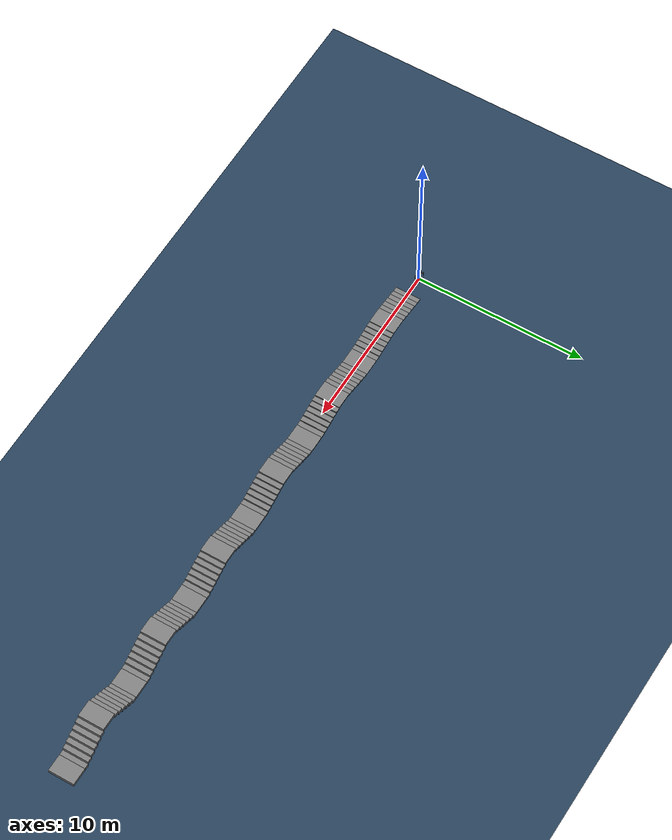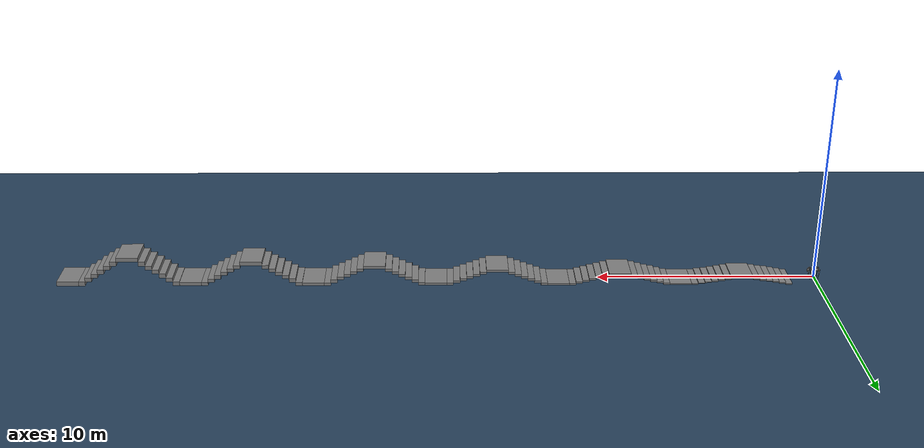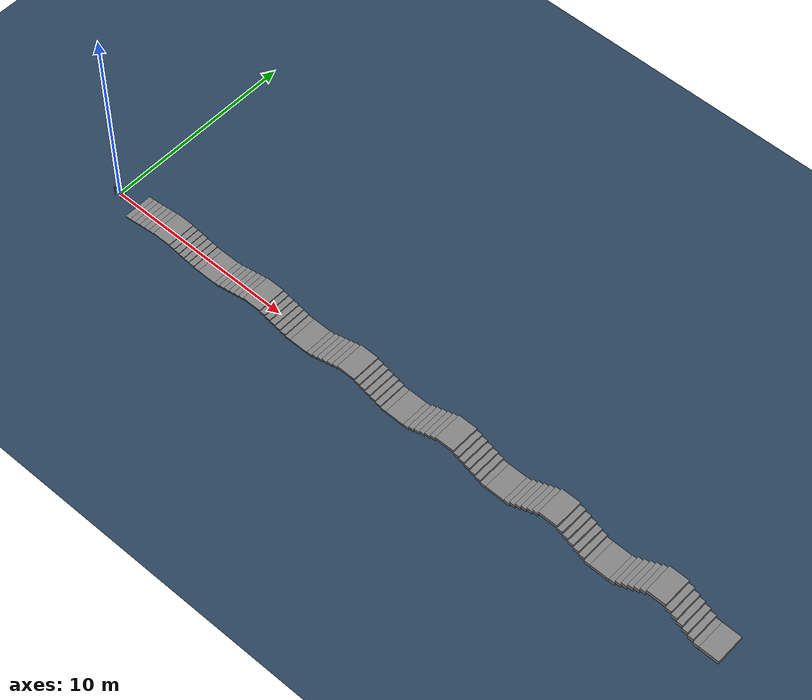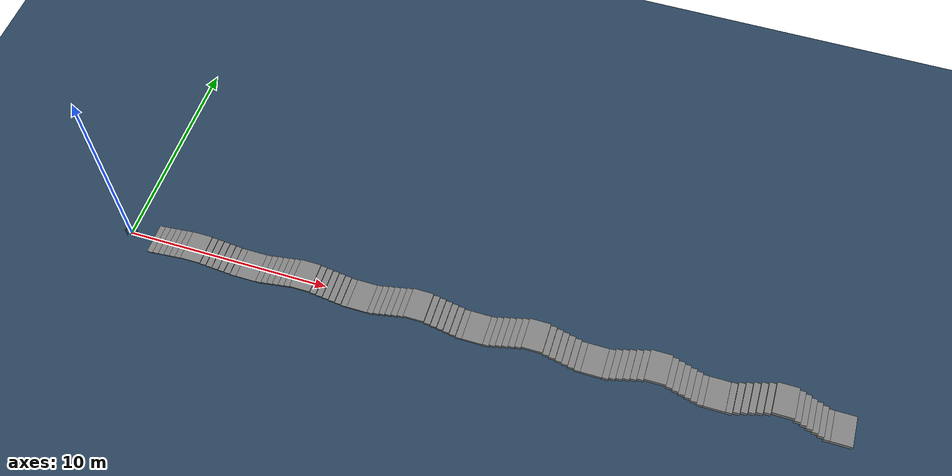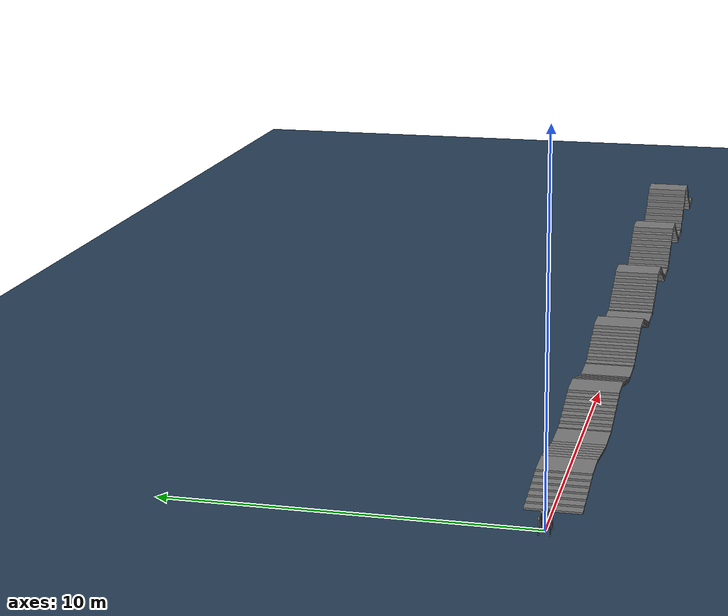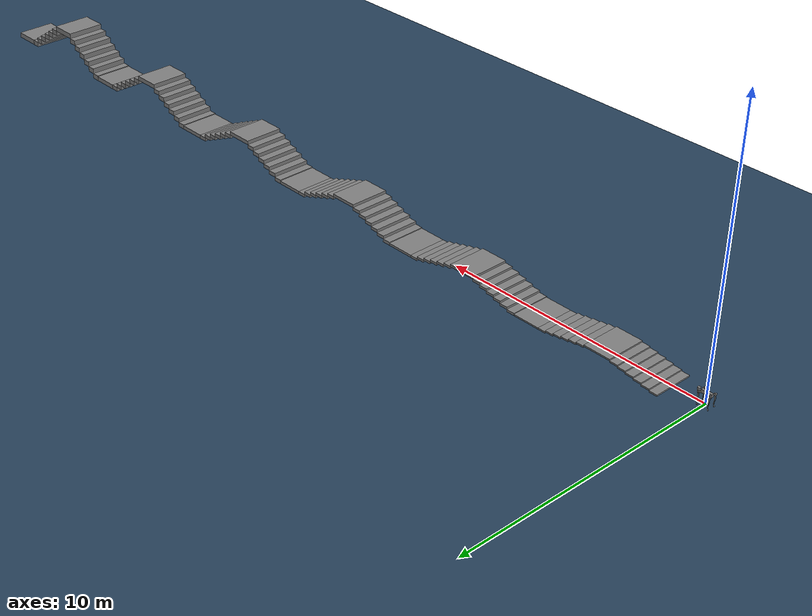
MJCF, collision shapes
<mujoco model="go2 scene">
  <include file="go2.xml"/>

  <statistic center="0 0 0.1" extent="0.8" />

  <visual>
    <headlight diffuse="0.6 0.6 0.6" ambient="0.3 0.3 0.3" specular="0 0 0" />
    <rgba haze="0.15 0.25 0.35 1" />
    <global azimuth="-130" elevation="-20" />
  </visual>

  <asset>
    <texture type="skybox" builtin="gradient" rgb1="0.3 0.5 0.7" rgb2="0 0 0" width="512" height="3072" />
    <texture type="2d" name="groundplane" builtin="checker" mark="edge" rgb1="0.2 0.3 0.4" rgb2="0.1 0.2 0.3" markrgb="0.8 0.8 0.8" width="300" height="300" />
    <material name="groundplane" texture="groundplane" texuniform="true" texrepeat="5 5" reflectance="0.2" />
  </asset>

  <worldbody>
    <light pos="0 0 1.5" dir="0 0 -1" directional="true" />
    <geom name="floor" size="0 0 0.05" type="plane" material="groundplane" />

  <geom pos="1.3 0.0 0.025" type="box" size="0.15 0.75 0.025" quat="1.0 0.0 0.0 0.0" /><geom pos="1.6 0.0 0.07500000000000001" type="box" size="0.15 0.75 0.025" quat="1.0 0.0 0.0 0.0" /><geom pos="1.9 0.0 0.125" type="box" size="0.15 0.75 0.025" quat="1.0 0.0 0.0 0.0" /><geom pos="2.2 0.0 0.17500000000000002" type="box" size="0.15 0.75 0.025" quat="1.0 0.0 0.0 0.0" /><geom pos="2.5 0.0 0.225" type="box" size="0.15 0.75 0.025" quat="1.0 0.0 0.0 0.0" /><geom pos="2.8 0.0 0.275" type="box" size="0.15 0.75 0.025" quat="1.0 0.0 0.0 0.0" /><geom pos="3.4499999999999997 0.0 0.32500000000000007" type="box" size="0.5 0.75 0.025" quat="1.0 0.0 0.0 0.0" /><geom pos="4.1 0.0 0.275" type="box" size="0.15 0.75 0.025" quat="1.0 0.0 0.0 0.0" /><geom pos="4.3999999999999995 0.0 0.22500000000000003" type="box" size="0.15 0.75 0.025" quat="1.0 0.0 0.0 0.0" /><geom pos="4.699999999999999 0.0 0.17500000000000002" type="box" size="0.15 0.75 0.025" quat="1.0 0.0 0.0 0.0" /><geom pos="5.0 0.0 0.125" type="box" size="0.15 0.75 0.025" quat="1.0 0.0 0.0 0.0" /><geom pos="5.3 0.0 0.07500000000000001" type="box" size="0.15 0.75 0.025" quat="1.0 0.0 0.0 0.0" /><geom pos="5.6 0.0 0.025000000000000022" type="box" size="0.15 0.75 0.025" quat="1.0 0.0 0.0 0.0" /><geom pos="6.25 0.0 0.025" type="box" size="0.5 0.75 0.025" quat="1.0 0.0 0.0 0.0" /><geom pos="6.898999999999999 0.0 0.04" type="box" size="0.15 0.75 0.04" quat="1.0 0.0 0.0 0.0" /><geom pos="7.198999999999999 0.0 0.12" type="box" size="0.15 0.75 0.04" quat="1.0 0.0 0.0 0.0" /><geom pos="7.498999999999999 0.0 0.2" type="box" size="0.15 0.75 0.04" quat="1.0 0.0 0.0 0.0" /><geom pos="7.7989999999999995 0.0 0.28" type="box" size="0.15 0.75 0.04" quat="1.0 0.0 0.0 0.0" /><geom pos="8.099 0.0 0.36" type="box" size="0.15 0.75 0.04" quat="1.0 0.0 0.0 0.0" /><geom pos="8.399 0.0 0.44" type="box" size="0.15 0.75 0.04" quat="1.0 0.0 0.0 0.0" /><geom pos="9.049 0.0 0.52" type="box" size="0.5 0.75 0.04" quat="1.0 0.0 0.0 0.0" /><geom pos="9.698999999999998 0.0 0.44" type="box" size="0.15 0.75 0.04" quat="1.0 0.0 0.0 0.0" /><geom pos="9.998999999999999 0.0 0.36" type="box" size="0.15 0.75 0.04" quat="1.0 0.0 0.0 0.0" /><geom pos="10.299 0.0 0.28" type="box" size="0.15 0.75 0.04" quat="1.0 0.0 0.0 0.0" /><geom pos="10.598999999999998 0.0 0.2" type="box" size="0.15 0.75 0.04" quat="1.0 0.0 0.0 0.0" /><geom pos="10.899 0.0 0.12" type="box" size="0.15 0.75 0.04" quat="1.0 0.0 0.0 0.0" /><geom pos="11.198999999999998 0.0 0.03999999999999998" type="box" size="0.15 0.75 0.04" quat="1.0 0.0 0.0 0.0" /><geom pos="11.849 0.0 0.04" type="box" size="0.5 0.75 0.04" quat="1.0 0.0 0.0 0.0" /><geom pos="12.498 0.0 0.055" type="box" size="0.15 0.75 0.055" quat="1.0 0.0 0.0 0.0" /><geom pos="12.797999999999998 0.0 0.165" type="box" size="0.15 0.75 0.055" quat="1.0 0.0 0.0 0.0" /><geom pos="13.097999999999999 0.0 0.275" type="box" size="0.15 0.75 0.055" quat="1.0 0.0 0.0 0.0" /><geom pos="13.397999999999998 0.0 0.385" type="box" size="0.15 0.75 0.055" quat="1.0 0.0 0.0 0.0" /><geom pos="13.697999999999999 0.0 0.495" type="box" size="0.15 0.75 0.055" quat="1.0 0.0 0.0 0.0" /><geom pos="13.997999999999998 0.0 0.605" type="box" size="0.15 0.75 0.055" quat="1.0 0.0 0.0 0.0" /><geom pos="14.647999999999998 0.0 0.7150000000000001" type="box" size="0.5 0.75 0.055" quat="1.0 0.0 0.0 0.0" /><geom pos="15.297999999999998 0.0 0.605" type="box" size="0.15 0.75 0.055" quat="1.0 0.0 0.0 0.0" /><geom pos="15.597999999999999 0.0 0.495" type="box" size="0.15 0.75 0.055" quat="1.0 0.0 0.0 0.0" /><geom pos="15.897999999999998 0.0 0.385" type="box" size="0.15 0.75 0.055" quat="1.0 0.0 0.0 0.0" /><geom pos="16.197999999999997 0.0 0.27499999999999997" type="box" size="0.15 0.75 0.055" quat="1.0 0.0 0.0 0.0" /><geom pos="16.497999999999998 0.0 0.16499999999999998" type="box" size="0.15 0.75 0.055" quat="1.0 0.0 0.0 0.0" /><geom pos="16.798 0.0 0.05499999999999994" type="box" size="0.15 0.75 0.055" quat="1.0 0.0 0.0 0.0" /><geom pos="17.448 0.0 0.055" type="box" size="0.5 0.75 0.055" quat="1.0 0.0 0.0 0.0" /><geom pos="18.096999999999998 0.0 0.07" type="box" size="0.15 0.75 0.07" quat="1.0 0.0 0.0 0.0" /><geom pos="18.397 0.0 0.21000000000000002" type="box" size="0.15 0.75 0.07" quat="1.0 0.0 0.0 0.0" /><geom pos="18.696999999999996 0.0 0.35000000000000003" type="box" size="0.15 0.75 0.07" quat="1.0 0.0 0.0 0.0" /><geom pos="18.996999999999996 0.0 0.49000000000000005" type="box" size="0.15 0.75 0.07" quat="1.0 0.0 0.0 0.0" /><geom pos="19.296999999999997 0.0 0.6300000000000001" type="box" size="0.15 0.75 0.07" quat="1.0 0.0 0.0 0.0" /><geom pos="19.596999999999998 0.0 0.77" type="box" size="0.15 0.75 0.07" quat="1.0 0.0 0.0 0.0" /><geom pos="20.246999999999996 0.0 0.9100000000000001" type="box" size="0.5 0.75 0.07" quat="1.0 0.0 0.0 0.0" /><geom pos="20.897 0.0 0.77" type="box" size="0.15 0.75 0.07" quat="1.0 0.0 0.0 0.0" /><geom pos="21.196999999999996 0.0 0.63" type="box" size="0.15 0.75 0.07" quat="1.0 0.0 0.0 0.0" /><geom pos="21.496999999999996 0.0 0.49" type="box" size="0.15 0.75 0.07" quat="1.0 0.0 0.0 0.0" /><geom pos="21.796999999999997 0.0 0.35" type="box" size="0.15 0.75 0.07" quat="1.0 0.0 0.0 0.0" /><geom pos="22.096999999999998 0.0 0.20999999999999996" type="box" size="0.15 0.75 0.07" quat="1.0 0.0 0.0 0.0" /><geom pos="22.397 0.0 0.06999999999999995" type="box" size="0.15 0.75 0.07" quat="1.0 0.0 0.0 0.0" /><geom pos="23.046999999999997 0.0 0.07" type="box" size="0.5 0.75 0.07" quat="1.0 0.0 0.0 0.0" /><geom pos="23.695999999999998 0.0 0.085" type="box" size="0.15 0.75 0.085" quat="1.0 0.0 0.0 0.0" /><geom pos="23.996 0.0 0.255" type="box" size="0.15 0.75 0.085" quat="1.0 0.0 0.0 0.0" /><geom pos="24.295999999999996 0.0 0.42500000000000004" type="box" size="0.15 0.75 0.085" quat="1.0 0.0 0.0 0.0" /><geom pos="24.595999999999997 0.0 0.5950000000000001" type="box" size="0.15 0.75 0.085" quat="1.0 0.0 0.0 0.0" /><geom pos="24.895999999999997 0.0 0.765" type="box" size="0.15 0.75 0.085" quat="1.0 0.0 0.0 0.0" /><geom pos="25.195999999999998 0.0 0.935" type="box" size="0.15 0.75 0.085" quat="1.0 0.0 0.0 0.0" /><geom pos="25.845999999999997 0.0 1.105" type="box" size="0.5 0.75 0.085" quat="1.0 0.0 0.0 0.0" /><geom pos="26.495999999999995 0.0 0.935" type="box" size="0.15 0.75 0.085" quat="1.0 0.0 0.0 0.0" /><geom pos="26.795999999999996 0.0 0.765" type="box" size="0.15 0.75 0.085" quat="1.0 0.0 0.0 0.0" /><geom pos="27.095999999999997 0.0 0.595" type="box" size="0.15 0.75 0.085" quat="1.0 0.0 0.0 0.0" /><geom pos="27.395999999999997 0.0 0.42500000000000004" type="box" size="0.15 0.75 0.085" quat="1.0 0.0 0.0 0.0" /><geom pos="27.695999999999998 0.0 0.255" type="box" size="0.15 0.75 0.085" quat="1.0 0.0 0.0 0.0" /><geom pos="27.995999999999995 0.0 0.08499999999999996" type="box" size="0.15 0.75 0.085" quat="1.0 0.0 0.0 0.0" /><geom pos="28.645999999999997 0.0 0.085" type="box" size="0.5 0.75 0.085" quat="1.0 0.0 0.0 0.0" /><geom pos="29.294999999999998 0.0 0.1" type="box" size="0.15 0.75 0.1" quat="1.0 0.0 0.0 0.0" /><geom pos="29.595 0.0 0.30000000000000004" type="box" size="0.15 0.75 0.1" quat="1.0 0.0 0.0 0.0" /><geom pos="29.894999999999996 0.0 0.5" type="box" size="0.15 0.75 0.1" quat="1.0 0.0 0.0 0.0" /><geom pos="30.194999999999997 0.0 0.7000000000000001" type="box" size="0.15 0.75 0.1" quat="1.0 0.0 0.0 0.0" /><geom pos="30.494999999999997 0.0 0.9" type="box" size="0.15 0.75 0.1" quat="1.0 0.0 0.0 0.0" /><geom pos="30.794999999999998 0.0 1.1" type="box" size="0.15 0.75 0.1" quat="1.0 0.0 0.0 0.0" /><geom pos="31.444999999999997 0.0 1.3000000000000003" type="box" size="0.5 0.75 0.1" quat="1.0 0.0 0.0 0.0" /><geom pos="32.095 0.0 1.1" type="box" size="0.15 0.75 0.1" quat="1.0 0.0 0.0 0.0" /><geom pos="32.394999999999996 0.0 0.9000000000000001" type="box" size="0.15 0.75 0.1" quat="1.0 0.0 0.0 0.0" /><geom pos="32.695 0.0 0.7000000000000001" type="box" size="0.15 0.75 0.1" quat="1.0 0.0 0.0 0.0" /><geom pos="32.995 0.0 0.5" type="box" size="0.15 0.75 0.1" quat="1.0 0.0 0.0 0.0" /><geom pos="33.294999999999995 0.0 0.30000000000000004" type="box" size="0.15 0.75 0.1" quat="1.0 0.0 0.0 0.0" /><geom pos="33.595 0.0 0.10000000000000009" type="box" size="0.15 0.75 0.1" quat="1.0 0.0 0.0 0.0" /><geom pos="34.245 0.0 0.1" type="box" size="0.5 0.75 0.1" quat="1.0 0.0 0.0 0.0" /></worldbody>
</mujoco>

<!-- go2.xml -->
<mujoco model="go2">
  <compiler angle="radian" meshdir="assets" autolimits="true" />

  <option cone="elliptic" impratio="100" />

  <default>
    <default class="go2">
      <geom friction="0.6" margin="0.001" condim="1"/>
      <joint axis="0 1 0" damping="0.1" armature="0.01" frictionloss="0.2"/>
      <motor ctrlrange="-23.7 23.7"/>
      <default class="abduction">
        <joint axis="1 0 0" range="-1.0472 1.0472"/>
      </default>
      <default class="hip">
        <default class="front_hip">
          <joint range="-1.5708 3.4907"/>
        </default>
        <default class="back_hip">
          <joint range="-0.5236 4.5379"/>
        </default>
      </default>
      <default class="knee">
        <joint range="-2.7227 -0.83776"/>
        <motor ctrlrange="-45.43 45.43"/>
      </default>
      <default class="visual">
        <geom type="mesh" contype="0" conaffinity="0" group="2"/>
      </default>
      <default class="collision">
        <geom group="3"/>
        <default class="foot">
          <geom size="0.022" pos="-0.002 0 -0.213" priority="1" condim="6"
            friction="0.6 0.02 0.01"/>
        </default>
      </default>
    </default>
  </default>

  <asset>
    <material name="metal" rgba=".9 .95 .95 1" />
    <material name="black" rgba="0 0 0 1" />
    <material name="white" rgba="1 1 1 1" />
    <material name="gray" rgba="0.671705 0.692426 0.774270 1" />

    <mesh file="base_0.obj" />
    <mesh file="base_1.obj" />
    <mesh file="base_2.obj" />
    <mesh file="base_3.obj" />
    <mesh file="base_4.obj" />
    <mesh file="hip_0.obj" />
    <mesh file="hip_1.obj" />
    <mesh file="thigh_0.obj" />
    <mesh file="thigh_1.obj" />
    <mesh file="thigh_mirror_0.obj" />
    <mesh file="thigh_mirror_1.obj" />
    <mesh file="calf_0.obj" />
    <mesh file="calf_1.obj" />
    <mesh file="calf_mirror_0.obj" />
    <mesh file="calf_mirror_1.obj" />
    <mesh file="foot.obj" />
  </asset>

  <worldbody>
    <body name="base_link" pos="0 0 0.4" childclass="go2">
      <inertial pos="0.021112 0 -0.005366" quat="-0.000543471 0.713435 -0.00173769 0.700719"
        mass="6.921"
        diaginertia="0.107027 0.0980771 0.0244531" />
      <freejoint />
      <geom mesh="base_0" material="black" class="visual" />
      <geom mesh="base_1" material="black" class="visual" />
      <geom mesh="base_2" material="black" class="visual" />
      <geom mesh="base_3" material="white" class="visual" />
      <geom mesh="base_4" material="gray" class="visual" />
      <geom size="0.1881 0.04675 0.057" type="box" class="collision" />
      <geom size="0.05 0.045" pos="0.285 0 0.01" type="cylinder" class="collision" />
      <geom size="0.047" pos="0.293 0 -0.06" class="collision" />
      <site name="imu" pos="-0.02557 0 0.04232" />
      <body name="FL_hip" pos="0.1934 0.0465 0">
        <inertial pos="-0.0054 0.00194 -0.000105" quat="0.497014 0.499245 0.505462 0.498237"
          mass="0.678"
          diaginertia="0.00088403 0.000596003 0.000479967" />
        <joint name="FL_hip_joint" class="abduction" />
        <geom mesh="hip_0" material="metal" class="visual" />
        <geom mesh="hip_1" material="gray" class="visual" />
        <geom size="0.046 0.02" pos="0 0.08 0" quat="1 1 0 0" type="cylinder" class="collision" />
        <body name="FL_thigh" pos="0 0.0955 0">
          <inertial pos="-0.00374 -0.0223 -0.0327" quat="0.829533 0.0847635 -0.0200632 0.551623"
            mass="1.152"
            diaginertia="0.00594973 0.00584149 0.000878787" />
          <joint name="FL_thigh_joint" class="front_hip" />
          <geom mesh="thigh_0" material="metal" class="visual" />
          <geom mesh="thigh_1" material="gray" class="visual" />
          <geom size="0.1065 0.01225 0.017" pos="0 0 -0.1065" quat="0.707107 0 0.707107 0"
            type="box" class="collision" />
          <body name="FL_calf" pos="0 0 -0.213">
            <inertial pos="0.00629595 -0.000622121 -0.141417"
              quat="0.710672 0.00154099 -0.00450087 0.703508"
              mass="0.241352" diaginertia="0.0014901 0.00146356 5.31397e-05" />
            <joint name="FL_calf_joint" class="knee" />
            <geom mesh="calf_0" material="gray" class="visual" />
            <geom mesh="calf_1" material="black" class="visual" />
            <geom size="0.012 0.06" pos="0.008 0 -0.06" quat="0.994493 0 -0.104807 0"
              type="cylinder" class="collision" />
            <geom size="0.011 0.0325" pos="0.02 0 -0.148" quat="0.999688 0 0.0249974 0"
              type="cylinder" class="collision" />
            <geom pos="0 0 -0.213" mesh="foot" class="visual" material="black" />
            <geom name="FL" class="foot" />
            <body name="FL_foot" pos="0 0 -0.213" />
          </body>
        </body>
      </body>
      <body name="FR_hip" pos="0.1934 -0.0465 0">
        <inertial pos="-0.0054 -0.00194 -0.000105" quat="0.498237 0.505462 0.499245 0.497014"
          mass="0.678"
          diaginertia="0.00088403 0.000596003 0.000479967" />
        <joint name="FR_hip_joint" class="abduction" />
        <geom mesh="hip_0" material="metal" class="visual" quat="4.63268e-05 1 0 0" />
        <geom mesh="hip_1" material="gray" class="visual" quat="4.63268e-05 1 0 0" />
        <geom size="0.046 0.02" pos="0 -0.08 0" quat="0.707107 0.707107 0 0" type="cylinder"
          class="collision" />
        <body name="FR_thigh" pos="0 -0.0955 0">
          <inertial pos="-0.00374 0.0223 -0.0327" quat="0.551623 -0.0200632 0.0847635 0.829533"
            mass="1.152"
            diaginertia="0.00594973 0.00584149 0.000878787" />
          <joint name="FR_thigh_joint" class="front_hip" />
          <geom mesh="thigh_mirror_0" material="metal" class="visual" />
          <geom mesh="thigh_mirror_1" material="gray" class="visual" />
          <geom size="0.1065 0.01225 0.017" pos="0 0 -0.1065" quat="0.707107 0 0.707107 0"
            type="box" class="collision" />
          <body name="FR_calf" pos="0 0 -0.213">
            <inertial pos="0.00629595 0.000622121 -0.141417"
              quat="0.703508 -0.00450087 0.00154099 0.710672"
              mass="0.241352" diaginertia="0.0014901 0.00146356 5.31397e-05" />
            <joint name="FR_calf_joint" class="knee" />
            <geom mesh="calf_mirror_0" material="gray" class="visual" />
            <geom mesh="calf_mirror_1" material="black" class="visual" />
            <geom size="0.013 0.06" pos="0.01 0 -0.06" quat="0.995004 0 -0.0998334 0"
              type="cylinder" class="collision" />
            <geom size="0.011 0.0325" pos="0.02 0 -0.148" quat="0.999688 0 0.0249974 0"
              type="cylinder" class="collision" />
            <geom pos="0 0 -0.213" mesh="foot" class="visual" material="black" />
            <geom name="FR" class="foot" />
            <body name="FR_foot" pos="0 0 -0.213" />
          </body>
        </body>
      </body>
      <body name="RL_hip" pos="-0.1934 0.0465 0">
        <inertial pos="0.0054 0.00194 -0.000105" quat="0.505462 0.498237 0.497014 0.499245"
          mass="0.678"
          diaginertia="0.00088403 0.000596003 0.000479967" />
        <joint name="RL_hip_joint" class="abduction" />
        <geom mesh="hip_0" material="metal" class="visual" quat="4.63268e-05 0 1 0" />
        <geom mesh="hip_1" material="gray" class="visual" quat="4.63268e-05 0 1 0" />
        <geom size="0.046 0.02" pos="0 0.08 0" quat="0.707107 0.707107 0 0" type="cylinder"
          class="collision" />
        <body name="RL_thigh" pos="0 0.0955 0">
          <inertial pos="-0.00374 -0.0223 -0.0327" quat="0.829533 0.0847635 -0.0200632 0.551623"
            mass="1.152"
            diaginertia="0.00594973 0.00584149 0.000878787" />
          <joint name="RL_thigh_joint" class="back_hip" />
          <geom mesh="thigh_0" material="metal" class="visual" />
          <geom mesh="thigh_1" material="gray" class="visual" />
          <geom size="0.1065 0.01225 0.017" pos="0 0 -0.1065" quat="0.707107 0 0.707107 0"
            type="box" class="collision" />
          <body name="RL_calf" pos="0 0 -0.213">
            <inertial pos="0.00629595 -0.000622121 -0.141417"
              quat="0.710672 0.00154099 -0.00450087 0.703508"
              mass="0.241352" diaginertia="0.0014901 0.00146356 5.31397e-05" />
            <joint name="RL_calf_joint" class="knee" />
            <geom mesh="calf_0" material="gray" class="visual" />
            <geom mesh="calf_1" material="black" class="visual" />
            <geom size="0.013 0.06" pos="0.01 0 -0.06" quat="0.995004 0 -0.0998334 0"
              type="cylinder" class="collision" />
            <geom size="0.011 0.0325" pos="0.02 0 -0.148" quat="0.999688 0 0.0249974 0"
              type="cylinder" class="collision" />
            <geom pos="0 0 -0.213" mesh="foot" class="visual" material="black" />
            <geom name="RL" class="foot" />
            <body name="RL_foot" pos="0 0 -0.213" />
          </body>
        </body>
      </body>
      <body name="RR_hip" pos="-0.1934 -0.0465 0">
        <inertial pos="0.0054 -0.00194 -0.000105" quat="0.499245 0.497014 0.498237 0.505462"
          mass="0.678"
          diaginertia="0.00088403 0.000596003 0.000479967" />
        <joint name="RR_hip_joint" class="abduction" />
        <geom mesh="hip_0" material="metal" class="visual"
          quat="2.14617e-09 4.63268e-05 4.63268e-05 -1" />
        <geom mesh="hip_1" material="gray" class="visual"
          quat="2.14617e-09 4.63268e-05 4.63268e-05 -1" />
        <geom size="0.046 0.02" pos="0 -0.08 0" quat="0.707107 0.707107 0 0" type="cylinder"
          class="collision" />
        <body name="RR_thigh" pos="0 -0.0955 0">
          <inertial pos="-0.00374 0.0223 -0.0327" quat="0.551623 -0.0200632 0.0847635 0.829533"
            mass="1.152"
            diaginertia="0.00594973 0.00584149 0.000878787" />
          <joint name="RR_thigh_joint" class="back_hip" />
          <geom mesh="thigh_mirror_0" material="metal" class="visual" />
          <geom mesh="thigh_mirror_1" material="gray" class="visual" />
          <geom size="0.1065 0.01225 0.017" pos="0 0 -0.1065" quat="0.707107 0 0.707107 0"
            type="box" class="collision" />
          <body name="RR_calf" pos="0 0 -0.213">
            <inertial pos="0.00629595 0.000622121 -0.141417"
              quat="0.703508 -0.00450087 0.00154099 0.710672"
              mass="0.241352" diaginertia="0.0014901 0.00146356 5.31397e-05" />
            <joint name="RR_calf_joint" class="knee" />
            <geom mesh="calf_mirror_0" material="gray" class="visual" />
            <geom mesh="calf_mirror_1" material="black" class="visual" />
            <geom size="0.013 0.06" pos="0.01 0 -0.06" quat="0.995004 0 -0.0998334 0"
              type="cylinder" class="collision" />
            <geom size="0.011 0.0325" pos="0.02 0 -0.148" quat="0.999688 0 0.0249974 0"
              type="cylinder" class="collision" />
            <geom pos="0 0 -0.213" mesh="foot" class="visual" material="black" />
            <geom name="RR" class="foot" />
            <body name="RR_foot" pos="0 0 -0.213" />
          </body>
        </body>
      </body>
    </body>
  </worldbody>

  <actuator>
    <motor class="abduction" name="FL_hip" joint="FL_hip_joint" />
    <motor class="hip" name="FL_thigh" joint="FL_thigh_joint" />
    <motor class="knee" name="FL_calf" joint="FL_calf_joint" />
    <motor class="abduction" name="FR_hip" joint="FR_hip_joint" />
    <motor class="hip" name="FR_thigh" joint="FR_thigh_joint" />
    <motor class="knee" name="FR_calf" joint="FR_calf_joint" />
    <motor class="abduction" name="RL_hip" joint="RL_hip_joint" />
    <motor class="hip" name="RL_thigh" joint="RL_thigh_joint" />
    <motor class="knee" name="RL_calf" joint="RL_calf_joint" />
    <motor class="abduction" name="RR_hip" joint="RR_hip_joint" />
    <motor class="hip" name="RR_thigh" joint="RR_thigh_joint" />
    <motor class="knee" name="RR_calf" joint="RR_calf_joint" />

  </actuator>

  <keyframe>
    <key name="home" qpos="0 0 0.27 1 0 0 0 0 0.9 -1.8 0 0.9 -1.8 0 0.9 -1.8 0 0.9 -1.8"
      ctrl="0 0.9 -1.8 0 0.9 -1.8 0 0.9 -1.8 0 0.9 -1.8" />
  </keyframe>
</mujoco>
